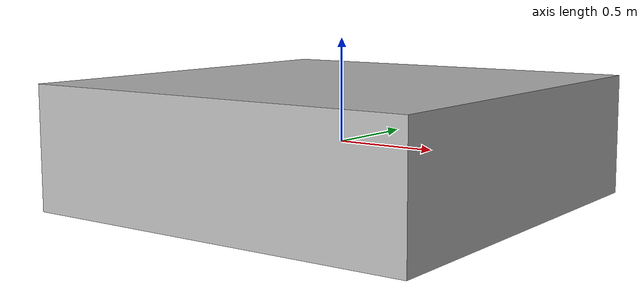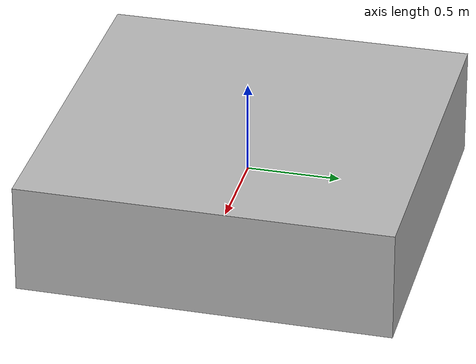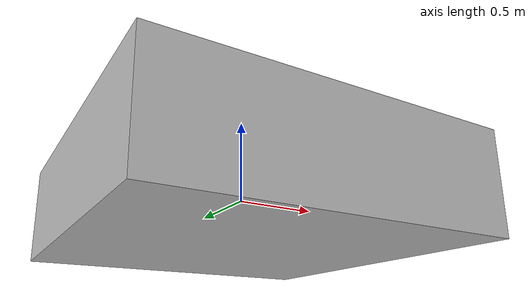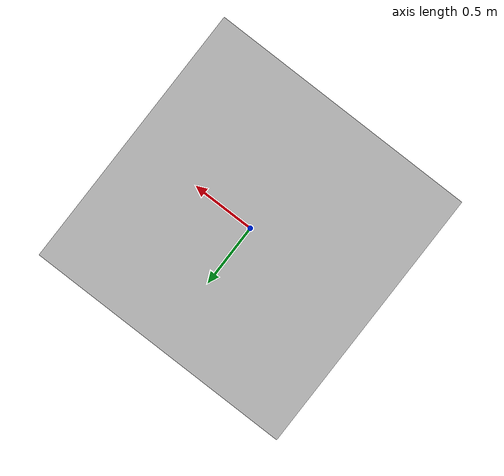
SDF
<?xml version="1.0" ?>
<sdf version="1.6">
        <model name="plate_obstacle">
            <static>true</static>
            <pose>0 0 0 0 0 0</pose>
            <link name="box">
                <collision name="plate_collision">
                    <pose frame="">0 0 0 0 0 0</pose>
                    <geometry>
                        <box>
                            <size>2 2 0.60</size>
                        </box>
                    </geometry>
                    <surface>
                        <friction>
                            <ode>
                                <mu>1</mu>
                            </ode>
                        </friction>
                    </surface>
                </collision>
                <visual name="plate_visual">
                    <pose frame="">0 0 0 0 0 0</pose>
                    <geometry>
                        <box>
                            <size>2 2 0.60</size>
                        </box>
                    </geometry>
                </visual>
            </link>
        </model>
</sdf>
